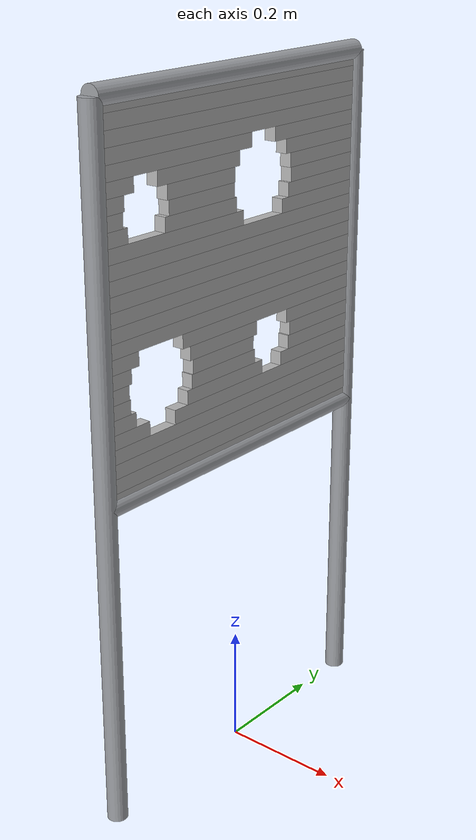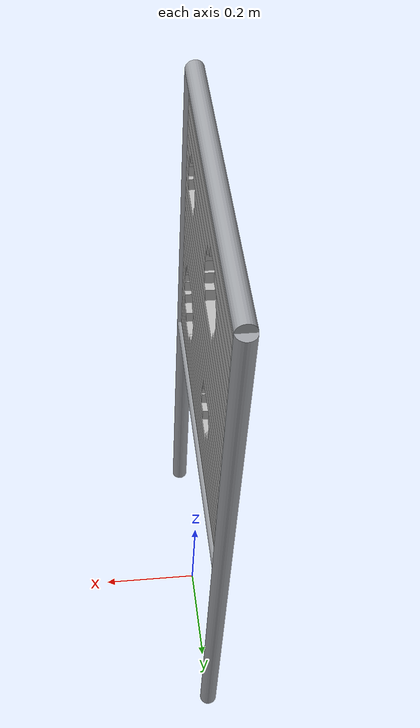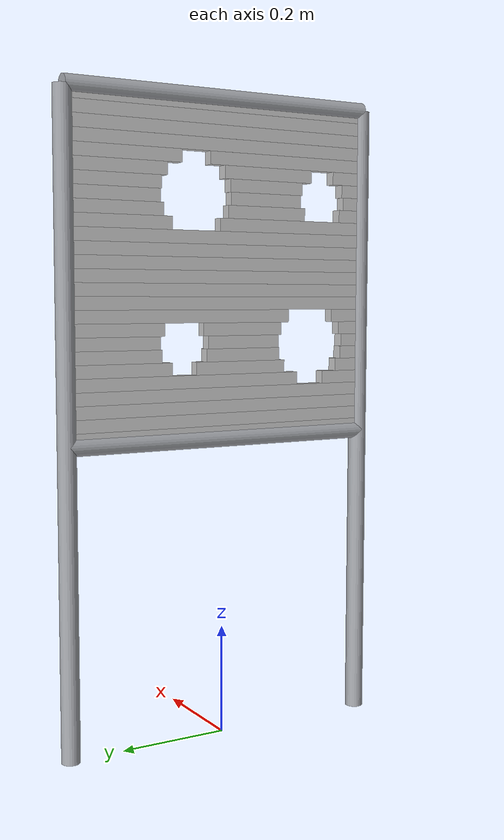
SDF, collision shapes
<?xml version="1.0"?>
<sdf version="1.9">
  <model name="robosub_torpedo_survey_repair">
    <static>true</static>
    <plugin filename="gz-sim-label-system" name="gz::sim::systems::Label">
      <label>15</label>
    </plugin>
    <link name="leg_0">
      <pose>0 -0.3 0.575 0 0 0</pose>
      <inertial>
        <pose>0 0 0 0 0 0</pose>
        <mass>2</mass>
        <inertia>
          <ixx>0.220556</ixx><ixy>0</ixy><ixz>0</ixz>
          <iyy>0.220556</iyy><iyz>0</iyz>
          <izz>0.00027889</izz>
        </inertia>
      </inertial>
      <visual name="leg_0_visual">
        <pose>0 0 0 0 0 0</pose>
        <geometry><cylinder><radius>0.0167</radius><length>1.15</length></cylinder></geometry>
        <material>
          <ambient>0.62 0.63 0.65 1</ambient>
          <diffuse>0.62 0.63 0.65 1</diffuse>
          <specular>0.55 0.55 0.55 1</specular>
          <emissive>0.174 0.176 0.182 1</emissive>
          <pbr>
            <metal>
              <albedo_map>model://robosub_textures/albedo_pvc.png</albedo_map>
              <metalness>0.0</metalness>
              <roughness_map>model://robosub_textures/rough_pvc.png</roughness_map>
              <normal_map>model://robosub_textures/norm_pvc.png</normal_map>
            </metal>
          </pbr>
        </material>
      </visual>
      <collision name="leg_0_collision">
        <pose>0 0 0 0 0 0</pose>
        <geometry><cylinder><radius>0.0167</radius><length>1.15</length></cylinder></geometry>
      </collision>
    </link>
    <link name="leg_1">
      <pose>0 0.3 0.575 0 0 0</pose>
      <inertial>
        <pose>0 0 0 0 0 0</pose>
        <mass>2</mass>
        <inertia>
          <ixx>0.220556</ixx><ixy>0</ixy><ixz>0</ixz>
          <iyy>0.220556</iyy><iyz>0</iyz>
          <izz>0.00027889</izz>
        </inertia>
      </inertial>
      <visual name="leg_1_visual">
        <pose>0 0 0 0 0 0</pose>
        <geometry><cylinder><radius>0.0167</radius><length>1.15</length></cylinder></geometry>
        <material>
          <ambient>0.62 0.63 0.65 1</ambient>
          <diffuse>0.62 0.63 0.65 1</diffuse>
          <specular>0.55 0.55 0.55 1</specular>
          <emissive>0.174 0.176 0.182 1</emissive>
          <pbr>
            <metal>
              <albedo_map>model://robosub_textures/albedo_pvc.png</albedo_map>
              <metalness>0.0</metalness>
              <roughness_map>model://robosub_textures/rough_pvc.png</roughness_map>
              <normal_map>model://robosub_textures/norm_pvc.png</normal_map>
            </metal>
          </pbr>
        </material>
      </visual>
      <collision name="leg_1_collision">
        <pose>0 0 0 0 0 0</pose>
        <geometry><cylinder><radius>0.0167</radius><length>1.15</length></cylinder></geometry>
      </collision>
    </link>
    <link name="rail_top">
      <pose>0 0 1.15 1.5708 0 0</pose>
      <inertial>
        <pose>0 0 0 0 0 0</pose>
        <mass>1.2</mass>
        <inertia>
          <ixx>0.0360837</ixx><ixy>0</ixy><ixz>0</ixz>
          <iyy>0.0360837</iyy><iyz>0</iyz>
          <izz>0.000167334</izz>
        </inertia>
      </inertial>
      <visual name="rail_top_visual">
        <pose>0 0 0 0 0 0</pose>
        <geometry><cylinder><radius>0.0167</radius><length>0.6</length></cylinder></geometry>
        <material>
          <ambient>0.62 0.63 0.65 1</ambient>
          <diffuse>0.62 0.63 0.65 1</diffuse>
          <specular>0.55 0.55 0.55 1</specular>
          <emissive>0.174 0.176 0.182 1</emissive>
          <pbr>
            <metal>
              <albedo_map>model://robosub_textures/albedo_pvc.png</albedo_map>
              <metalness>0.0</metalness>
              <roughness_map>model://robosub_textures/rough_pvc.png</roughness_map>
              <normal_map>model://robosub_textures/norm_pvc.png</normal_map>
            </metal>
          </pbr>
        </material>
      </visual>
      <collision name="rail_top_collision">
        <pose>0 0 0 0 0 0</pose>
        <geometry><cylinder><radius>0.0167</radius><length>0.6</length></cylinder></geometry>
      </collision>
    </link>
    <link name="rail_bottom">
      <pose>0 0 0.55 1.5708 0 0</pose>
      <inertial>
        <pose>0 0 0 0 0 0</pose>
        <mass>1.2</mass>
        <inertia>
          <ixx>0.0360837</ixx><ixy>0</ixy><ixz>0</ixz>
          <iyy>0.0360837</iyy><iyz>0</iyz>
          <izz>0.000167334</izz>
        </inertia>
      </inertial>
      <visual name="rail_bottom_visual">
        <pose>0 0 0 0 0 0</pose>
        <geometry><cylinder><radius>0.0167</radius><length>0.6</length></cylinder></geometry>
        <material>
          <ambient>0.62 0.63 0.65 1</ambient>
          <diffuse>0.62 0.63 0.65 1</diffuse>
          <specular>0.55 0.55 0.55 1</specular>
          <emissive>0.174 0.176 0.182 1</emissive>
          <pbr>
            <metal>
              <albedo_map>model://robosub_textures/albedo_pvc.png</albedo_map>
              <metalness>0.0</metalness>
              <roughness_map>model://robosub_textures/rough_pvc.png</roughness_map>
              <normal_map>model://robosub_textures/norm_pvc.png</normal_map>
            </metal>
          </pbr>
        </material>
      </visual>
      <collision name="rail_bottom_collision">
        <pose>0 0 0 0 0 0</pose>
        <geometry><cylinder><radius>0.0167</radius><length>0.6</length></cylinder></geometry>
      </collision>
    </link>
    <link name="board">
      <pose>0 0 0.85 0 0 0</pose>
      <inertial>
        <pose>0 0 0 0 0 0</pose>
        <mass>3</mass>
        <inertia>
          <ixx>0.18</ixx><ixy>0</ixy><ixz>0</ixz>
          <iyy>0.0901</iyy><iyz>0</iyz>
          <izz>0.0901</izz>
        </inertia>
      </inertial>
      <visual name="board_visual">
        <pose>0 0 0 0 0 0</pose>
        <geometry><mesh><uri>model://robosub_meshes/meshes/torpedo_plate.obj</uri></mesh></geometry>
        <material>
          <ambient>1 1 1 1</ambient>
          <diffuse>1 1 1 1</diffuse>
          <specular>0.06 0.06 0.06 1</specular>
          <emissive>0.1 0.1 0.1 1</emissive>
          <pbr>
            <metal>
              <albedo_map>model://robosub_textures/torpedo_panel_survey_repair.png</albedo_map>
              <metalness>0.0</metalness>
              <roughness>0.6</roughness>
            </metal>
          </pbr>
        </material>
      </visual>
    </link>
    <link name="plate_c0">
      <pose>0 0 0.561538 0 0 0</pose>
      <inertial>
        <pose>0 0 0 0 0 0</pose>
        <mass>0.05</mass>
        <inertia>
          <ixx>0.00150222</ixx><ixy>0</ixy><ixz>0</ixz>
          <iyy>3.8856e-06</iyy><iyz>0</iyz>
          <izz>0.00150167</izz>
        </inertia>
      </inertial>
      <collision name="plate_c0_collision">
        <pose>0 0 0 0 0 0</pose>
        <geometry><box><size>0.02 0.6 0.0230769</size></box></geometry>
      </collision>
    </link>
    <link name="plate_c1">
      <pose>0 0 0.584615 0 0 0</pose>
      <inertial>
        <pose>0 0 0 0 0 0</pose>
        <mass>0.05</mass>
        <inertia>
          <ixx>0.00150222</ixx><ixy>0</ixy><ixz>0</ixz>
          <iyy>3.8856e-06</iyy><iyz>0</iyz>
          <izz>0.00150167</izz>
        </inertia>
      </inertial>
      <collision name="plate_c1_collision">
        <pose>0 0 0 0 0 0</pose>
        <geometry><box><size>0.02 0.6 0.0230769</size></box></geometry>
      </collision>
    </link>
    <link name="plate_c2">
      <pose>0 0 0.607692 0 0 0</pose>
      <inertial>
        <pose>0 0 0 0 0 0</pose>
        <mass>0.05</mass>
        <inertia>
          <ixx>0.00150222</ixx><ixy>0</ixy><ixz>0</ixz>
          <iyy>3.8856e-06</iyy><iyz>0</iyz>
          <izz>0.00150167</izz>
        </inertia>
      </inertial>
      <collision name="plate_c2_collision">
        <pose>0 0 0 0 0 0</pose>
        <geometry><box><size>0.02 0.6 0.0230769</size></box></geometry>
      </collision>
    </link>
    <link name="plate_c3">
      <pose>0 0 0.630769 0 0 0</pose>
      <inertial>
        <pose>0 0 0 0 0 0</pose>
        <mass>0.05</mass>
        <inertia>
          <ixx>0.00150222</ixx><ixy>0</ixy><ixz>0</ixz>
          <iyy>3.8856e-06</iyy><iyz>0</iyz>
          <izz>0.00150167</izz>
        </inertia>
      </inertial>
      <collision name="plate_c3_collision">
        <pose>0 0 0 0 0 0</pose>
        <geometry><box><size>0.02 0.6 0.0230769</size></box></geometry>
      </collision>
    </link>
    <link name="plate_c4">
      <pose>0 -0.255503 0.653846 0 0 0</pose>
      <inertial>
        <pose>0 0 0 0 0 0</pose>
        <mass>0.05</mass>
        <inertia>
          <ixx>3.52193e-05</ixx><ixy>0</ixy><ixz>0</ixz>
          <iyy>3.8856e-06</iyy><iyz>0</iyz>
          <izz>3.46671e-05</izz>
        </inertia>
      </inertial>
      <collision name="plate_c4_collision">
        <pose>0 0 0 0 0 0</pose>
        <geometry><box><size>0.02 0.0889949 0.0230769</size></box></geometry>
      </collision>
    </link>
    <link name="plate_c5">
      <pose>0 0.0725025 0.653846 0 0 0</pose>
      <inertial>
        <pose>0 0 0 0 0 0</pose>
        <mass>0.05</mass>
        <inertia>
          <ixx>0.000864804</ixx><ixy>0</ixy><ixz>0</ixz>
          <iyy>3.8856e-06</iyy><iyz>0</iyz>
          <izz>0.000864252</izz>
        </inertia>
      </inertial>
      <collision name="plate_c5_collision">
        <pose>0 0 0 0 0 0</pose>
        <geometry><box><size>0.02 0.454995 0.0230769</size></box></geometry>
      </collision>
    </link>
    <link name="plate_c6">
      <pose>0 -0.26984 0.676923 0 0 0</pose>
      <inertial>
        <pose>0 0 0 0 0 0</pose>
        <mass>0.05</mass>
        <inertia>
          <ixx>1.73791e-05</ixx><ixy>0</ixy><ixz>0</ixz>
          <iyy>3.8856e-06</iyy><iyz>0</iyz>
          <izz>1.68268e-05</izz>
        </inertia>
      </inertial>
      <collision name="plate_c6_collision">
        <pose>0 0 0 0 0 0</pose>
        <geometry><box><size>0.02 0.0603194 0.0230769</size></box></geometry>
      </collision>
    </link>
    <link name="plate_c7">
      <pose>0 -0.0347942 0.676923 0 0 0</pose>
      <inertial>
        <pose>0 0 0 0 0 0</pose>
        <mass>0.05</mass>
        <inertia>
          <ixx>0.000141833</ixx><ixy>0</ixy><ixz>0</ixz>
          <iyy>3.8856e-06</iyy><iyz>0</iyz>
          <izz>0.000141281</izz>
        </inertia>
      </inertial>
      <collision name="plate_c7_collision">
        <pose>0 0 0 0 0 0</pose>
        <geometry><box><size>0.02 0.18305 0.0230769</size></box></geometry>
      </collision>
    </link>
    <link name="plate_c8">
      <pose>0 0.202218 0.676923 0 0 0</pose>
      <inertial>
        <pose>0 0 0 0 0 0</pose>
        <mass>0.05</mass>
        <inertia>
          <ixx>0.000161575</ixx><ixy>0</ixy><ixz>0</ixz>
          <iyy>3.8856e-06</iyy><iyz>0</iyz>
          <izz>0.000161022</izz>
        </inertia>
      </inertial>
      <collision name="plate_c8_collision">
        <pose>0 0 0 0 0 0</pose>
        <geometry><box><size>0.02 0.195564 0.0230769</size></box></geometry>
      </collision>
    </link>
    <link name="plate_c9">
      <pose>0 -0.275323 0.7 0 0 0</pose>
      <inertial>
        <pose>0 0 0 0 0 0</pose>
        <mass>0.05</mass>
        <inertia>
          <ixx>1.23681e-05</ixx><ixy>0</ixy><ixz>0</ixz>
          <iyy>3.8856e-06</iyy><iyz>0</iyz>
          <izz>1.18158e-05</izz>
        </inertia>
      </inertial>
      <collision name="plate_c9_collision">
        <pose>0 0 0 0 0 0</pose>
        <geometry><box><size>0.02 0.0493539 0.0230769</size></box></geometry>
      </collision>
    </link>
    <link name="plate_c10">
      <pose>0 -0.0393639 0.7 0 0 0</pose>
      <inertial>
        <pose>0 0 0 0 0 0</pose>
        <mass>0.05</mass>
        <inertia>
          <ixx>9.84601e-05</ixx><ixy>0</ixy><ixz>0</ixz>
          <iyy>3.8856e-06</iyy><iyz>0</iyz>
          <izz>9.79078e-05</izz>
        </inertia>
      </inertial>
      <collision name="plate_c10_collision">
        <pose>0 0 0 0 0 0</pose>
        <geometry><box><size>0.02 0.15198 0.0230769</size></box></geometry>
      </collision>
    </link>
    <link name="plate_c11">
      <pose>0 0.21227 0.7 0 0 0</pose>
      <inertial>
        <pose>0 0 0 0 0 0</pose>
        <mass>0.05</mass>
        <inertia>
          <ixx>0.000130494</ixx><ixy>0</ixy><ixz>0</ixz>
          <iyy>3.8856e-06</iyy><iyz>0</iyz>
          <izz>0.000129942</izz>
        </inertia>
      </inertial>
      <collision name="plate_c11_collision">
        <pose>0 0 0 0 0 0</pose>
        <geometry><box><size>0.02 0.175459 0.0230769</size></box></geometry>
      </collision>
    </link>
    <link name="plate_c12">
      <pose>0 -0.276408 0.723077 0 0 0</pose>
      <inertial>
        <pose>0 0 0 0 0 0</pose>
        <mass>0.05</mass>
        <inertia>
          <ixx>1.14954e-05</ixx><ixy>0</ixy><ixz>0</ixz>
          <iyy>3.8856e-06</iyy><iyz>0</iyz>
          <izz>1.09432e-05</izz>
        </inertia>
      </inertial>
      <collision name="plate_c12_collision">
        <pose>0 0 0 0 0 0</pose>
        <geometry><box><size>0.02 0.0471844 0.0230769</size></box></geometry>
      </collision>
    </link>
    <link name="plate_c13">
      <pose>0 -0.0399145 0.723077 0 0 0</pose>
      <inertial>
        <pose>0 0 0 0 0 0</pose>
        <mass>0.05</mass>
        <inertia>
          <ixx>9.16935e-05</ixx><ixy>0</ixy><ixz>0</ixz>
          <iyy>3.8856e-06</iyy><iyz>0</iyz>
          <izz>9.11413e-05</izz>
        </inertia>
      </inertial>
      <collision name="plate_c13_collision">
        <pose>0 0 0 0 0 0</pose>
        <geometry><box><size>0.02 0.14654 0.0230769</size></box></geometry>
      </collision>
    </link>
    <link name="plate_c14">
      <pose>0 0.213906 0.723077 0 0 0</pose>
      <inertial>
        <pose>0 0 0 0 0 0</pose>
        <mass>0.05</mass>
        <inertia>
          <ixx>0.000125756</ixx><ixy>0</ixy><ixz>0</ixz>
          <iyy>3.8856e-06</iyy><iyz>0</iyz>
          <izz>0.000125204</izz>
        </inertia>
      </inertial>
      <collision name="plate_c14_collision">
        <pose>0 0 0 0 0 0</pose>
        <geometry><box><size>0.02 0.172189 0.0230769</size></box></geometry>
      </collision>
    </link>
    <link name="plate_c15">
      <pose>0 -0.273544 0.746154 0 0 0</pose>
      <inertial>
        <pose>0 0 0 0 0 0</pose>
        <mass>0.05</mass>
        <inertia>
          <ixx>1.3884e-05</ixx><ixy>0</ixy><ixz>0</ixz>
          <iyy>3.8856e-06</iyy><iyz>0</iyz>
          <izz>1.33317e-05</izz>
        </inertia>
      </inertial>
      <collision name="plate_c15_collision">
        <pose>0 0 0 0 0 0</pose>
        <geometry><box><size>0.02 0.0529113 0.0230769</size></box></geometry>
      </collision>
    </link>
    <link name="plate_c16">
      <pose>0 -0.0382926 0.746154 0 0 0</pose>
      <inertial>
        <pose>0 0 0 0 0 0</pose>
        <mass>0.05</mass>
        <inertia>
          <ixx>0.000110542</ixx><ixy>0</ixy><ixz>0</ixz>
          <iyy>3.8856e-06</iyy><iyz>0</iyz>
          <izz>0.00010999</izz>
        </inertia>
      </inertial>
      <collision name="plate_c16_collision">
        <pose>0 0 0 0 0 0</pose>
        <geometry><box><size>0.02 0.161237 0.0230769</size></box></geometry>
      </collision>
    </link>
    <link name="plate_c17">
      <pose>0 0.20942 0.746154 0 0 0</pose>
      <inertial>
        <pose>0 0 0 0 0 0</pose>
        <mass>0.05</mass>
        <inertia>
          <ixx>0.000138964</ixx><ixy>0</ixy><ixz>0</ixz>
          <iyy>3.8856e-06</iyy><iyz>0</iyz>
          <izz>0.000138412</izz>
        </inertia>
      </inertial>
      <collision name="plate_c17_collision">
        <pose>0 0 0 0 0 0</pose>
        <geometry><box><size>0.02 0.181159 0.0230769</size></box></geometry>
      </collision>
    </link>
    <link name="plate_c18">
      <pose>0 -0.265351 0.769231 0 0 0</pose>
      <inertial>
        <pose>0 0 0 0 0 0</pose>
        <mass>0.05</mass>
        <inertia>
          <ixx>2.22286e-05</ixx><ixy>0</ixy><ixz>0</ixz>
          <iyy>3.8856e-06</iyy><iyz>0</iyz>
          <izz>2.16763e-05</izz>
        </inertia>
      </inertial>
      <collision name="plate_c18_collision">
        <pose>0 0 0 0 0 0</pose>
        <geometry><box><size>0.02 0.0692988 0.0230769</size></box></geometry>
      </collision>
    </link>
    <link name="plate_c19">
      <pose>0 0.0823506 0.769231 0 0 0</pose>
      <inertial>
        <pose>0 0 0 0 0 0</pose>
        <mass>0.05</mass>
        <inertia>
          <ixx>0.00079174</ixx><ixy>0</ixy><ixz>0</ixz>
          <iyy>3.8856e-06</iyy><iyz>0</iyz>
          <izz>0.000791188</izz>
        </inertia>
      </inertial>
      <collision name="plate_c19_collision">
        <pose>0 0 0 0 0 0</pose>
        <geometry><box><size>0.02 0.435299 0.0230769</size></box></geometry>
      </collision>
    </link>
    <link name="plate_c20">
      <pose>0 0 0.792308 0 0 0</pose>
      <inertial>
        <pose>0 0 0 0 0 0</pose>
        <mass>0.05</mass>
        <inertia>
          <ixx>0.00150222</ixx><ixy>0</ixy><ixz>0</ixz>
          <iyy>3.8856e-06</iyy><iyz>0</iyz>
          <izz>0.00150167</izz>
        </inertia>
      </inertial>
      <collision name="plate_c20_collision">
        <pose>0 0 0 0 0 0</pose>
        <geometry><box><size>0.02 0.6 0.0230769</size></box></geometry>
      </collision>
    </link>
    <link name="plate_c21">
      <pose>0 0 0.815385 0 0 0</pose>
      <inertial>
        <pose>0 0 0 0 0 0</pose>
        <mass>0.05</mass>
        <inertia>
          <ixx>0.00150222</ixx><ixy>0</ixy><ixz>0</ixz>
          <iyy>3.8856e-06</iyy><iyz>0</iyz>
          <izz>0.00150167</izz>
        </inertia>
      </inertial>
      <collision name="plate_c21_collision">
        <pose>0 0 0 0 0 0</pose>
        <geometry><box><size>0.02 0.6 0.0230769</size></box></geometry>
      </collision>
    </link>
    <link name="plate_c22">
      <pose>0 0 0.838462 0 0 0</pose>
      <inertial>
        <pose>0 0 0 0 0 0</pose>
        <mass>0.05</mass>
        <inertia>
          <ixx>0.00150222</ixx><ixy>0</ixy><ixz>0</ixz>
          <iyy>3.8856e-06</iyy><iyz>0</iyz>
          <izz>0.00150167</izz>
        </inertia>
      </inertial>
      <collision name="plate_c22_collision">
        <pose>0 0 0 0 0 0</pose>
        <geometry><box><size>0.02 0.6 0.0230769</size></box></geometry>
      </collision>
    </link>
    <link name="plate_c23">
      <pose>0 0 0.861538 0 0 0</pose>
      <inertial>
        <pose>0 0 0 0 0 0</pose>
        <mass>0.05</mass>
        <inertia>
          <ixx>0.00150222</ixx><ixy>0</ixy><ixz>0</ixz>
          <iyy>3.8856e-06</iyy><iyz>0</iyz>
          <izz>0.00150167</izz>
        </inertia>
      </inertial>
      <collision name="plate_c23_collision">
        <pose>0 0 0 0 0 0</pose>
        <geometry><box><size>0.02 0.6 0.0230769</size></box></geometry>
      </collision>
    </link>
    <link name="plate_c24">
      <pose>0 0 0.884615 0 0 0</pose>
      <inertial>
        <pose>0 0 0 0 0 0</pose>
        <mass>0.05</mass>
        <inertia>
          <ixx>0.00150222</ixx><ixy>0</ixy><ixz>0</ixz>
          <iyy>3.8856e-06</iyy><iyz>0</iyz>
          <izz>0.00150167</izz>
        </inertia>
      </inertial>
      <collision name="plate_c24_collision">
        <pose>0 0 0 0 0 0</pose>
        <geometry><box><size>0.02 0.6 0.0230769</size></box></geometry>
      </collision>
    </link>
    <link name="plate_c25">
      <pose>0 0 0.907692 0 0 0</pose>
      <inertial>
        <pose>0 0 0 0 0 0</pose>
        <mass>0.05</mass>
        <inertia>
          <ixx>0.00150222</ixx><ixy>0</ixy><ixz>0</ixz>
          <iyy>3.8856e-06</iyy><iyz>0</iyz>
          <izz>0.00150167</izz>
        </inertia>
      </inertial>
      <collision name="plate_c25_collision">
        <pose>0 0 0 0 0 0</pose>
        <geometry><box><size>0.02 0.6 0.0230769</size></box></geometry>
      </collision>
    </link>
    <link name="plate_c26">
      <pose>0 -0.145934 0.930769 0 0 0</pose>
      <inertial>
        <pose>0 0 0 0 0 0</pose>
        <mass>0.05</mass>
        <inertia>
          <ixx>0.000397825</ixx><ixy>0</ixy><ixz>0</ixz>
          <iyy>3.8856e-06</iyy><iyz>0</iyz>
          <izz>0.000397272</izz>
        </inertia>
      </inertial>
      <collision name="plate_c26_collision">
        <pose>0 0 0 0 0 0</pose>
        <geometry><box><size>0.02 0.308132 0.0230769</size></box></geometry>
      </collision>
    </link>
    <link name="plate_c27">
      <pose>0 0.201767 0.930769 0 0 0</pose>
      <inertial>
        <pose>0 0 0 0 0 0</pose>
        <mass>0.05</mass>
        <inertia>
          <ixx>0.000163047</ixx><ixy>0</ixy><ixz>0</ixz>
          <iyy>3.8856e-06</iyy><iyz>0</iyz>
          <izz>0.000162494</izz>
        </inertia>
      </inertial>
      <collision name="plate_c27_collision">
        <pose>0 0 0 0 0 0</pose>
        <geometry><box><size>0.02 0.196465 0.0230769</size></box></geometry>
      </collision>
    </link>
    <link name="plate_c28">
      <pose>0 -0.273004 0.953846 0 0 0</pose>
      <inertial>
        <pose>0 0 0 0 0 0</pose>
        <mass>0.05</mass>
        <inertia>
          <ixx>1.43657e-05</ixx><ixy>0</ixy><ixz>0</ixz>
          <iyy>3.8856e-06</iyy><iyz>0</iyz>
          <izz>1.38134e-05</izz>
        </inertia>
      </inertial>
      <collision name="plate_c28_collision">
        <pose>0 0 0 0 0 0</pose>
        <geometry><box><size>0.02 0.0539928 0.0230769</size></box></geometry>
      </collision>
    </link>
    <link name="plate_c29">
      <pose>0 -0.0888741 0.953846 0 0 0</pose>
      <inertial>
        <pose>0 0 0 0 0 0</pose>
        <mass>0.05</mass>
        <inertia>
          <ixx>0.000110542</ixx><ixy>0</ixy><ixz>0</ixz>
          <iyy>3.8856e-06</iyy><iyz>0</iyz>
          <izz>0.00010999</izz>
        </inertia>
      </inertial>
      <collision name="plate_c29_collision">
        <pose>0 0 0 0 0 0</pose>
        <geometry><box><size>0.02 0.161237 0.0230769</size></box></geometry>
      </collision>
    </link>
    <link name="plate_c30">
      <pose>0 0.209961 0.953846 0 0 0</pose>
      <inertial>
        <pose>0 0 0 0 0 0</pose>
        <mass>0.05</mass>
        <inertia>
          <ixx>0.000137336</ixx><ixy>0</ixy><ixz>0</ixz>
          <iyy>3.8856e-06</iyy><iyz>0</iyz>
          <izz>0.000136784</izz>
        </inertia>
      </inertial>
      <collision name="plate_c30_collision">
        <pose>0 0 0 0 0 0</pose>
        <geometry><box><size>0.02 0.180078 0.0230769</size></box></geometry>
      </collision>
    </link>
    <link name="plate_c31">
      <pose>0 -0.277489 0.976923 0 0 0</pose>
      <inertial>
        <pose>0 0 0 0 0 0</pose>
        <mass>0.05</mass>
        <inertia>
          <ixx>1.06647e-05</ixx><ixy>0</ixy><ixz>0</ixz>
          <iyy>3.8856e-06</iyy><iyz>0</iyz>
          <izz>1.01125e-05</izz>
        </inertia>
      </inertial>
      <collision name="plate_c31_collision">
        <pose>0 0 0 0 0 0</pose>
        <geometry><box><size>0.02 0.0450221 0.0230769</size></box></geometry>
      </collision>
    </link>
    <link name="plate_c32">
      <pose>0 -0.0872522 0.976923 0 0 0</pose>
      <inertial>
        <pose>0 0 0 0 0 0</pose>
        <mass>0.05</mass>
        <inertia>
          <ixx>9.16935e-05</ixx><ixy>0</ixy><ixz>0</ixz>
          <iyy>3.8856e-06</iyy><iyz>0</iyz>
          <izz>9.11413e-05</izz>
        </inertia>
      </inertial>
      <collision name="plate_c32_collision">
        <pose>0 0 0 0 0 0</pose>
        <geometry><box><size>0.02 0.14654 0.0230769</size></box></geometry>
      </collision>
    </link>
    <link name="plate_c33">
      <pose>0 0.212824 0.976923 0 0 0</pose>
      <inertial>
        <pose>0 0 0 0 0 0</pose>
        <mass>0.05</mass>
        <inertia>
          <ixx>0.000128878</ixx><ixy>0</ixy><ixz>0</ixz>
          <iyy>3.8856e-06</iyy><iyz>0</iyz>
          <izz>0.000128326</izz>
        </inertia>
      </inertial>
      <collision name="plate_c33_collision">
        <pose>0 0 0 0 0 0</pose>
        <geometry><box><size>0.02 0.174351 0.0230769</size></box></geometry>
      </collision>
    </link>
    <link name="plate_c34">
      <pose>0 -0.275854 1 0 0 0</pose>
      <inertial>
        <pose>0 0 0 0 0 0</pose>
        <mass>0.05</mass>
        <inertia>
          <ixx>1.19363e-05</ixx><ixy>0</ixy><ixz>0</ixz>
          <iyy>3.8856e-06</iyy><iyz>0</iyz>
          <izz>1.13841e-05</izz>
        </inertia>
      </inertial>
      <collision name="plate_c34_collision">
        <pose>0 0 0 0 0 0</pose>
        <geometry><box><size>0.02 0.0482926 0.0230769</size></box></geometry>
      </collision>
    </link>
    <link name="plate_c35">
      <pose>0 -0.0878027 1 0 0 0</pose>
      <inertial>
        <pose>0 0 0 0 0 0</pose>
        <mass>0.05</mass>
        <inertia>
          <ixx>9.84601e-05</ixx><ixy>0</ixy><ixz>0</ixz>
          <iyy>3.8856e-06</iyy><iyz>0</iyz>
          <izz>9.79078e-05</izz>
        </inertia>
      </inertial>
      <collision name="plate_c35_collision">
        <pose>0 0 0 0 0 0</pose>
        <geometry><box><size>0.02 0.15198 0.0230769</size></box></geometry>
      </collision>
    </link>
    <link name="plate_c36">
      <pose>0 0.21174 1 0 0 0</pose>
      <inertial>
        <pose>0 0 0 0 0 0</pose>
        <mass>0.05</mass>
        <inertia>
          <ixx>0.00013205</ixx><ixy>0</ixy><ixz>0</ixz>
          <iyy>3.8856e-06</iyy><iyz>0</iyz>
          <izz>0.000131498</izz>
        </inertia>
      </inertial>
      <collision name="plate_c36_collision">
        <pose>0 0 0 0 0 0</pose>
        <geometry><box><size>0.02 0.176521 0.0230769</size></box></geometry>
      </collision>
    </link>
    <link name="plate_c37">
      <pose>0 -0.265801 1.02308 0 0 0</pose>
      <inertial>
        <pose>0 0 0 0 0 0</pose>
        <mass>0.05</mass>
        <inertia>
          <ixx>2.17116e-05</ixx><ixy>0</ixy><ixz>0</ixz>
          <iyy>3.8856e-06</iyy><iyz>0</iyz>
          <izz>2.11593e-05</izz>
        </inertia>
      </inertial>
      <collision name="plate_c37_collision">
        <pose>0 0 0 0 0 0</pose>
        <geometry><box><size>0.02 0.0683976 0.0230769</size></box></geometry>
      </collision>
    </link>
    <link name="plate_c38">
      <pose>0 -0.0923724 1.02308 0 0 0</pose>
      <inertial>
        <pose>0 0 0 0 0 0</pose>
        <mass>0.05</mass>
        <inertia>
          <ixx>0.000141833</ixx><ixy>0</ixy><ixz>0</ixz>
          <iyy>3.8856e-06</iyy><iyz>0</iyz>
          <izz>0.000141281</izz>
        </inertia>
      </inertial>
      <collision name="plate_c38_collision">
        <pose>0 0 0 0 0 0</pose>
        <geometry><box><size>0.02 0.18305 0.0230769</size></box></geometry>
      </collision>
    </link>
    <link name="plate_c39">
      <pose>0 0.206257 1.02308 0 0 0</pose>
      <inertial>
        <pose>0 0 0 0 0 0</pose>
        <mass>0.05</mass>
        <inertia>
          <ixx>0.000148682</ixx><ixy>0</ixy><ixz>0</ixz>
          <iyy>3.8856e-06</iyy><iyz>0</iyz>
          <izz>0.000148129</izz>
        </inertia>
      </inertial>
      <collision name="plate_c39_collision">
        <pose>0 0 0 0 0 0</pose>
        <geometry><box><size>0.02 0.187486 0.0230769</size></box></geometry>
      </collision>
    </link>
    <link name="plate_c40">
      <pose>0 -0.136086 1.04615 0 0 0</pose>
      <inertial>
        <pose>0 0 0 0 0 0</pose>
        <mass>0.05</mass>
        <inertia>
          <ixx>0.000450016</ixx><ixy>0</ixy><ixz>0</ixz>
          <iyy>3.8856e-06</iyy><iyz>0</iyz>
          <izz>0.000449464</izz>
        </inertia>
      </inertial>
      <collision name="plate_c40_collision">
        <pose>0 0 0 0 0 0</pose>
        <geometry><box><size>0.02 0.327828 0.0230769</size></box></geometry>
      </collision>
    </link>
    <link name="plate_c41">
      <pose>0 0.191919 1.04615 0 0 0</pose>
      <inertial>
        <pose>0 0 0 0 0 0</pose>
        <mass>0.05</mass>
        <inertia>
          <ixx>0.00019691</ixx><ixy>0</ixy><ixz>0</ixz>
          <iyy>3.8856e-06</iyy><iyz>0</iyz>
          <izz>0.000196358</izz>
        </inertia>
      </inertial>
      <collision name="plate_c41_collision">
        <pose>0 0 0 0 0 0</pose>
        <geometry><box><size>0.02 0.216162 0.0230769</size></box></geometry>
      </collision>
    </link>
    <link name="plate_c42">
      <pose>0 0 1.06923 0 0 0</pose>
      <inertial>
        <pose>0 0 0 0 0 0</pose>
        <mass>0.05</mass>
        <inertia>
          <ixx>0.00150222</ixx><ixy>0</ixy><ixz>0</ixz>
          <iyy>3.8856e-06</iyy><iyz>0</iyz>
          <izz>0.00150167</izz>
        </inertia>
      </inertial>
      <collision name="plate_c42_collision">
        <pose>0 0 0 0 0 0</pose>
        <geometry><box><size>0.02 0.6 0.0230769</size></box></geometry>
      </collision>
    </link>
    <link name="plate_c43">
      <pose>0 0 1.09231 0 0 0</pose>
      <inertial>
        <pose>0 0 0 0 0 0</pose>
        <mass>0.05</mass>
        <inertia>
          <ixx>0.00150222</ixx><ixy>0</ixy><ixz>0</ixz>
          <iyy>3.8856e-06</iyy><iyz>0</iyz>
          <izz>0.00150167</izz>
        </inertia>
      </inertial>
      <collision name="plate_c43_collision">
        <pose>0 0 0 0 0 0</pose>
        <geometry><box><size>0.02 0.6 0.0230769</size></box></geometry>
      </collision>
    </link>
    <link name="plate_c44">
      <pose>0 0 1.11538 0 0 0</pose>
      <inertial>
        <pose>0 0 0 0 0 0</pose>
        <mass>0.05</mass>
        <inertia>
          <ixx>0.00150222</ixx><ixy>0</ixy><ixz>0</ixz>
          <iyy>3.8856e-06</iyy><iyz>0</iyz>
          <izz>0.00150167</izz>
        </inertia>
      </inertial>
      <collision name="plate_c44_collision">
        <pose>0 0 0 0 0 0</pose>
        <geometry><box><size>0.02 0.6 0.0230769</size></box></geometry>
      </collision>
    </link>
    <link name="plate_c45">
      <pose>0 0 1.13846 0 0 0</pose>
      <inertial>
        <pose>0 0 0 0 0 0</pose>
        <mass>0.05</mass>
        <inertia>
          <ixx>0.00150222</ixx><ixy>0</ixy><ixz>0</ixz>
          <iyy>3.8856e-06</iyy><iyz>0</iyz>
          <izz>0.00150167</izz>
        </inertia>
      </inertial>
      <collision name="plate_c45_collision">
        <pose>0 0 0 0 0 0</pose>
        <geometry><box><size>0.02 0.6 0.0230769</size></box></geometry>
      </collision>
    </link>
  </model>
</sdf>
